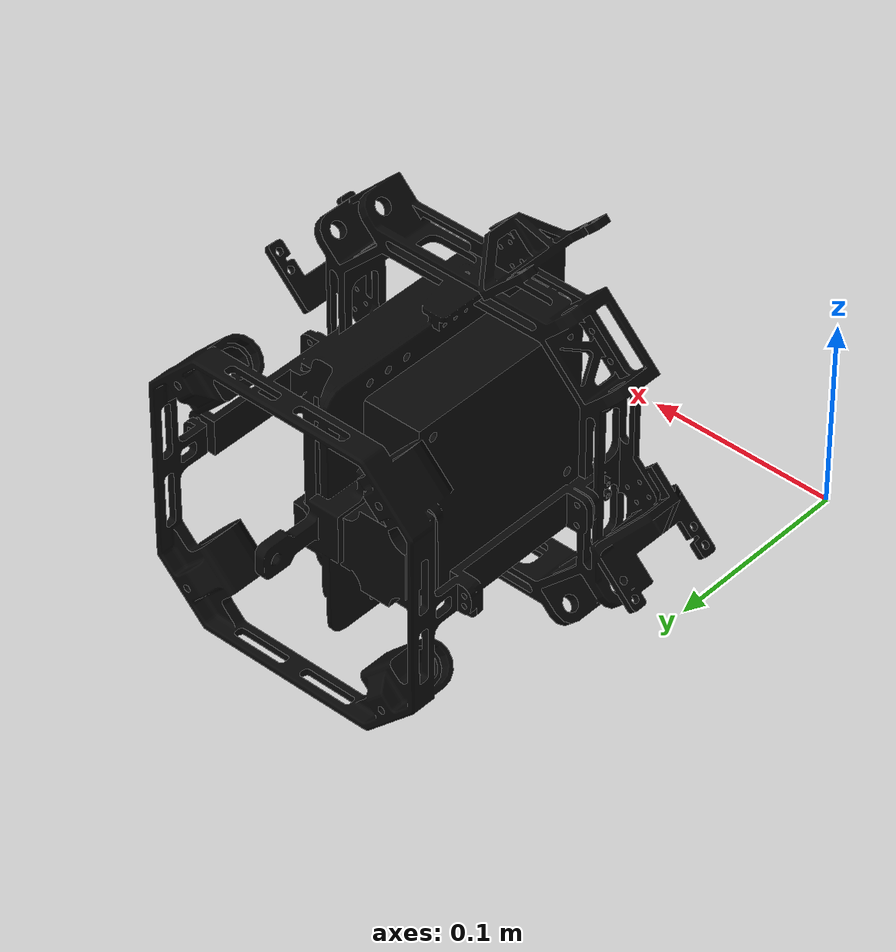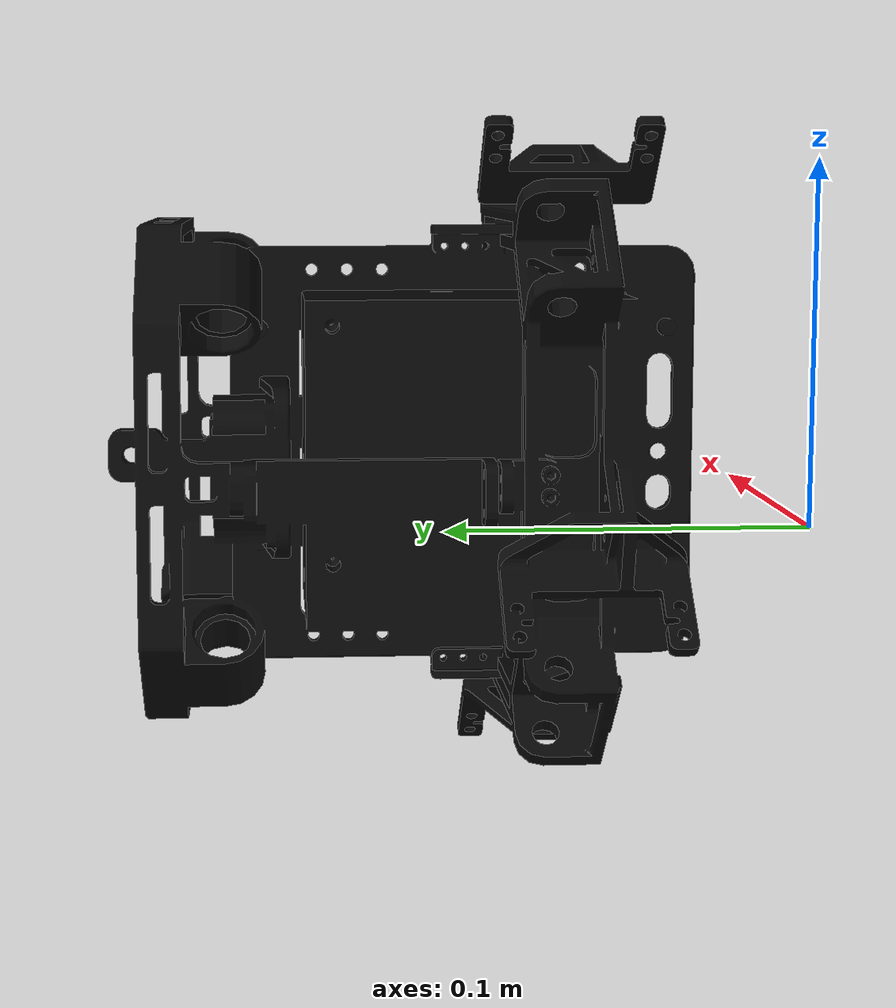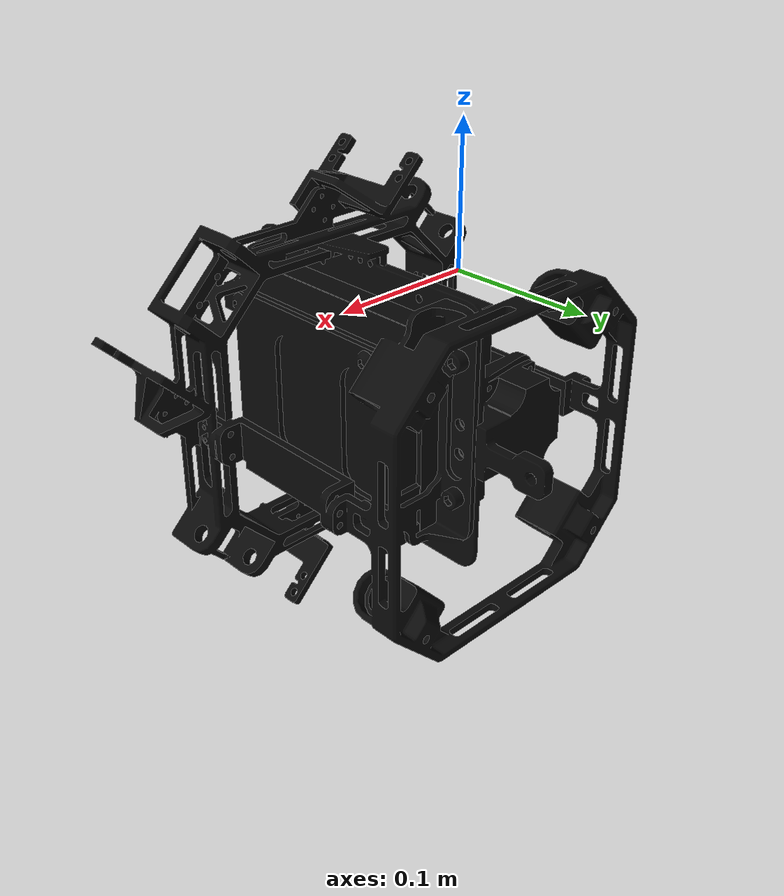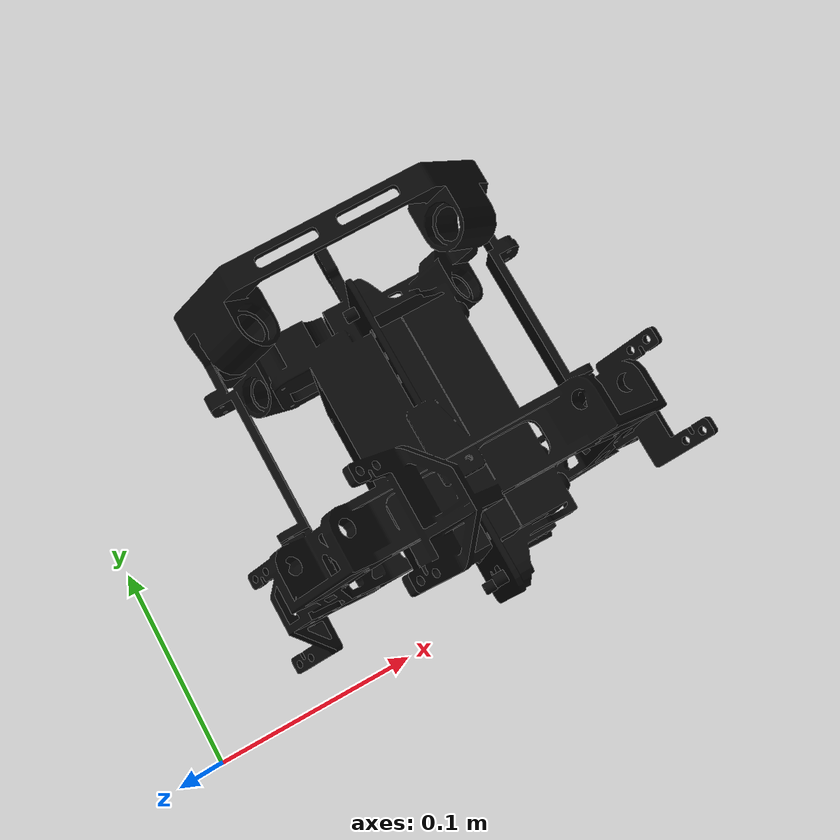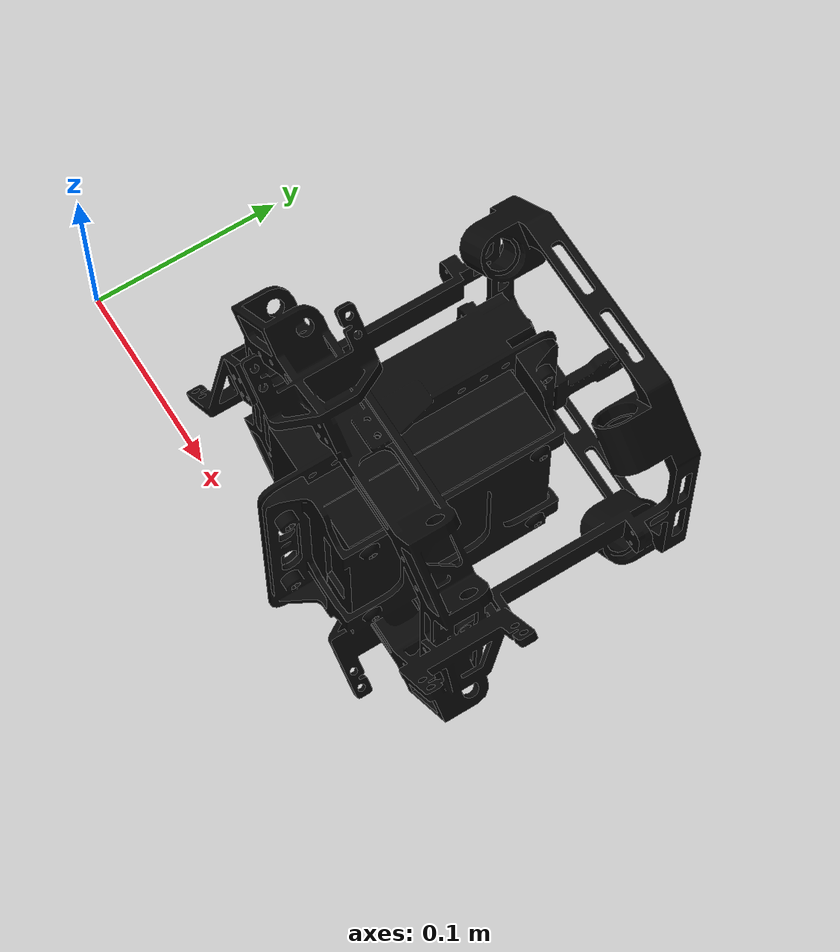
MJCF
<mujoco model="spaceRobot"> <!-- 定义一个名为“spaceRobot”的MuJoCo模型 -->
  <compiler angle="radian" meshdir="assets"/> <!-- 设置编译器使用弧度作为角度单位，并指定网格文件的目录为“assets” -->

  <!-- 将积分器设置为“implicitfast”，此行已被注释掉 -->

  <default> <!-- 默认设置开始 -->
    <default class="spaceRobot"> <!-- 为名为“spaceRobot”的类设置默认属性 -->
      <material specular="0.5" shininess="0.25"/> <!-- 设置材料的镜面反射率为0.5，光泽度为0.25 -->
      <joint axis="0 1 0" range="-6.28319 6.28319" armature="0.1"/> <!-- 设置关节的默认轴为Y轴，范围为[-6.28319, 6.28319]，电机惯量（armature）为0.1 -->
      <general gaintype="fixed" biastype="affine" ctrlrange="-6.2831 6.2831" gainprm="2000" biasprm="0 -2000 -400"
        forcerange="-150 150"/> <!-- 设置通用增益类型为固定，偏置类型为仿射，控制范围和力范围 -->
      <default class="size3"> <!-- 为尺寸为3的元素设置默认属性 -->
        <default class="size3_limited"> <!-- 为限制尺寸为3的元素设置默认属性 -->
          <joint range="-3.1415 3.1415"/> <!-- 设置关节的范围为[-3.1415, 3.1415] -->
          <general ctrlrange="-3.1415 3.1415"/> <!-- 设置控制范围为[-3.1415, 3.1415] -->
        </default>
      </default>
      <default class="size1"> <!-- 为尺寸为1的元素设置默认属性 -->
        <general gainprm="500" biasprm="0 -500 -100" forcerange="-28 28"/> <!-- 设置增益参数、偏置参数和力范围 -->
      </default>
      <default class="visual"> <!-- 为视觉相关的元素设置默认属性 -->
        <geom type="mesh" contype="0" conaffinity="0" group="2"/> <!-- 设置几何体类型为mesh，碰撞类型和碰撞群组 -->
      </default>
      <default class="collision"> <!-- 为碰撞相关的元素设置默认属性 -->
        <geom type="capsule" group="3"/> <!-- 设置几何体类型为capsule，碰撞群组为3 -->
        <default class="eef_collision"> <!-- 为末端执行器的碰撞设置默认属性 -->
          <geom type="cylinder"/> <!-- 设置几何体类型为cylinder -->
        </default>
      </default>
      <site size="0.001" rgba="0.5 0.5 0.5 0.3" group="4"/> <!-- 设置标志点的大小、颜色和群组 -->
    </default>
  </default> <!-- 默认设置结束 -->

  <asset> <!-- 资产定义开始 -->
    <material class="spaceRobot" name="black" rgba="0.033 0.033 0.033 1"/> <!-- 定义一个名为“black”的材料，为“spaceRobot”类使用 -->
    <mesh file="mujocoBase.stl"/> <!-- 引入一个STL文件作为mesh资产 -->
  </asset> <!-- 资产定义结束 -->

  <worldbody> <!-- 世界主体定义开始 -->
    <body name="base" pos="0 0 0" quat="1 0 0 0" childclass="spaceRobot"> <!-- 定义一个名为“base”的主体，位置为原点，不旋转 -->
      <geom mesh="mujocoBase" material="black" class="visual"/> <!-- 使用mesh类型的几何体，引用了“mujocoBase.stl”文件和“black”材料，此几何体用于视觉展示 -->
    </body>
  </worldbody> <!-- 世界主体定义结束 -->

</mujoco> <!-- MuJoCo模型定义结束 -->
